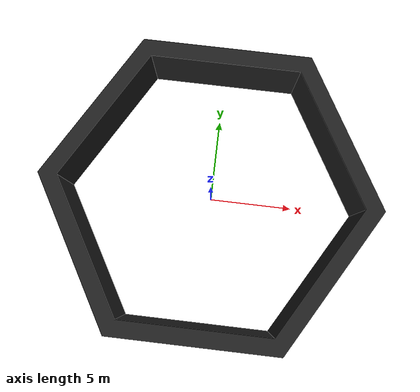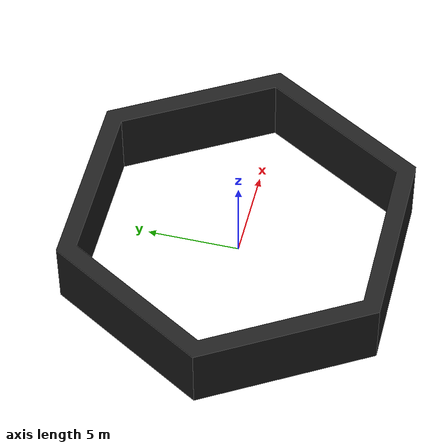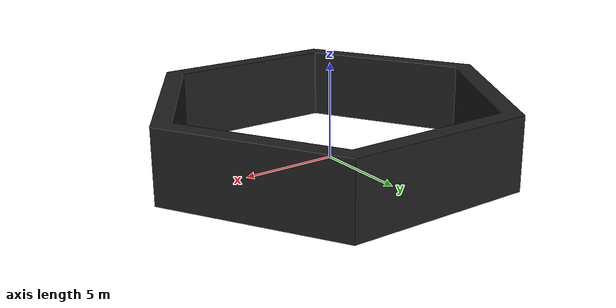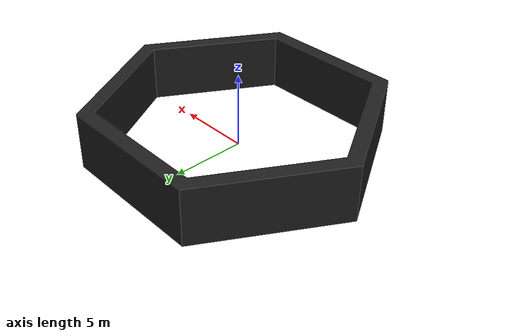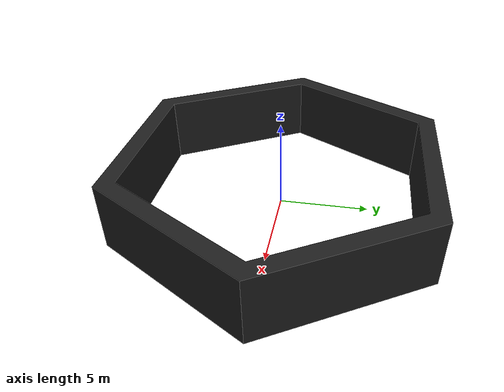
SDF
<sdf version='1.5'>
    <!-- Draw Circle -->
    <model name='ros_symbol'>
      <static>1</static>
      <link name='symbol'>

        <!-- Draw Wall -->
        <collision name='body'>
        <pose>0 0 -0.3 0 0 -1.5708</pose>
        <geometry>
          <mesh>
            <uri>model://turtlebot3_world/meshes/wall.dae</uri>
            <scale>0.75 0.75 0.75</scale>
          </mesh>
        </geometry>
        <max_contacts>10</max_contacts>
        <surface>
          <bounce/>
          <friction>
            <ode/>
          </friction>
          <contact>
            <ode/>
          </contact>
        </surface>
      </collision>

      <visual name='body'>
        <pose>0 0 -0.3 0 0 -1.5708</pose>
        <geometry>
          <mesh>
            <uri>model://turtlebot3_world/meshes/wall.dae</uri>
            <scale>0.75 0.75 0.75</scale>
          </mesh>
        </geometry>
        <material>
          <script>
            <uri>file://media/materials/scripts/gazebo.material</uri>
            <name>Gazebo/FlatBlack</name>
          </script>
        </material>
      </visual>

    </link>
  </model>
</sdf>
